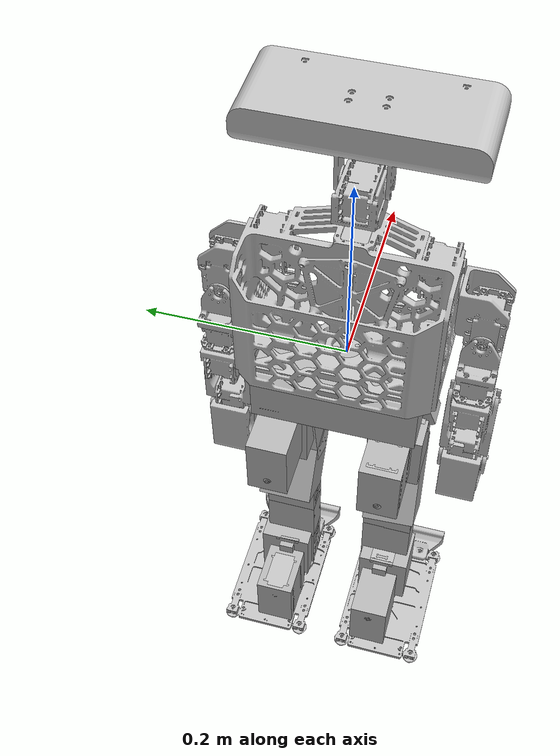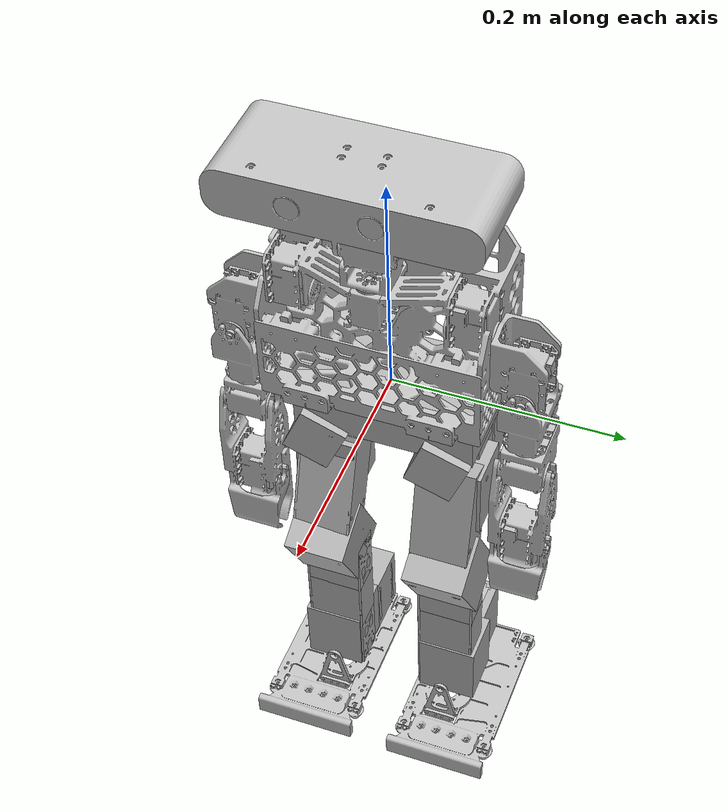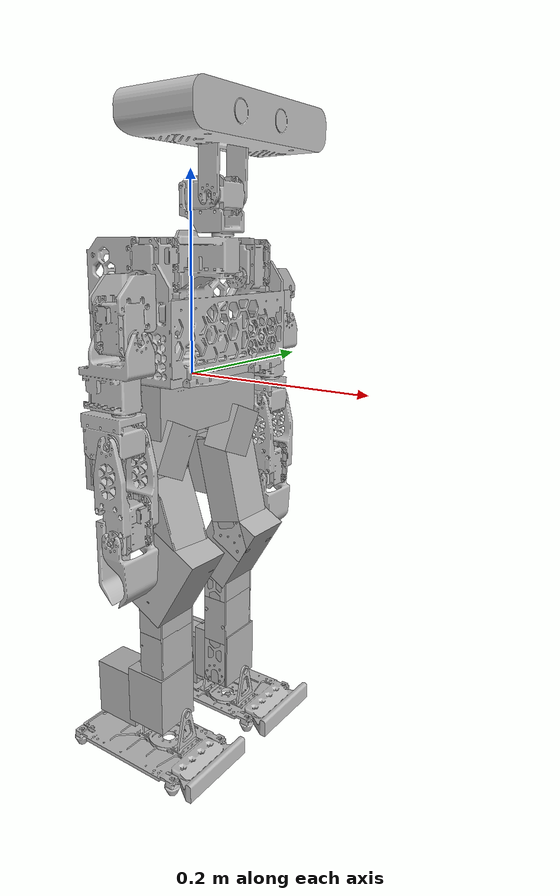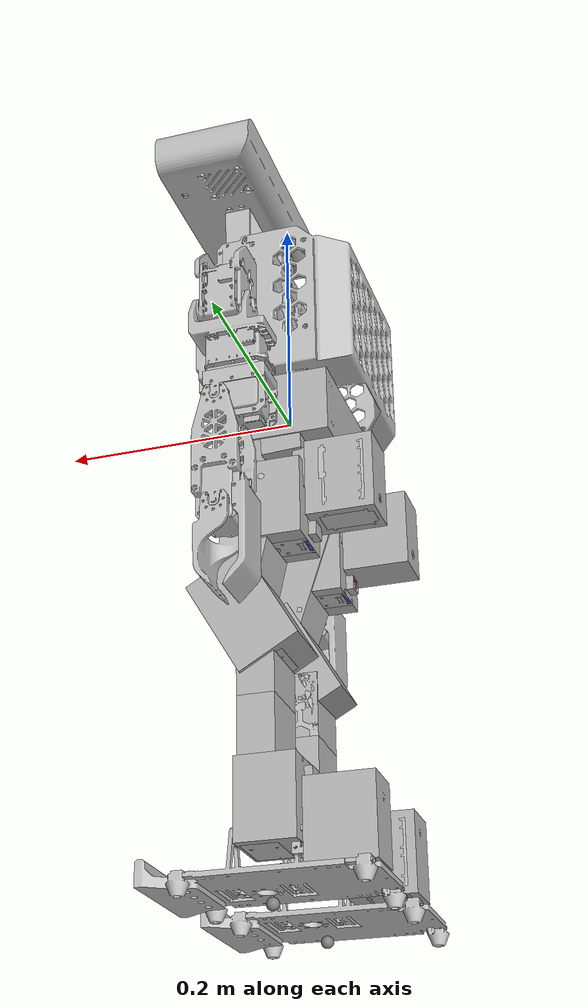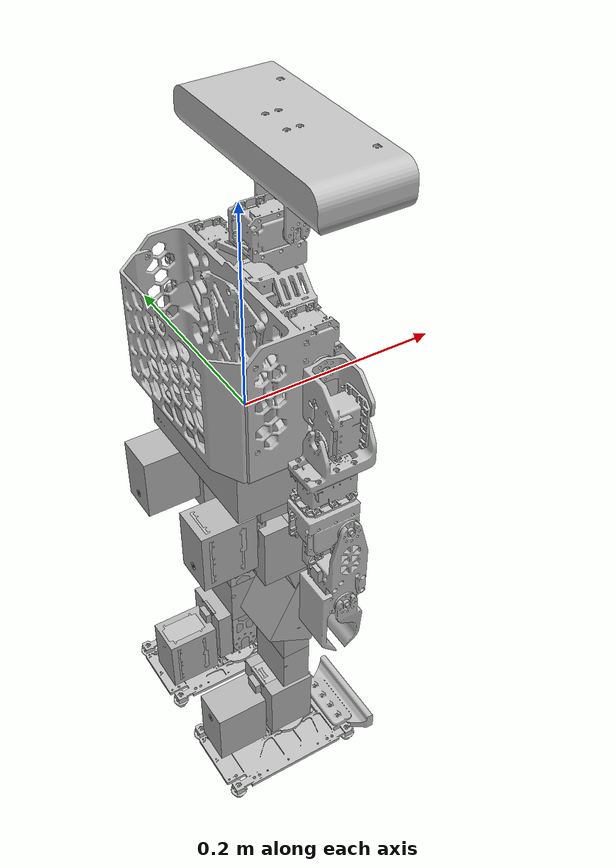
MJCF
<mujoco model="kid_RL_dance">
  <compiler angle="radian" meshdir="assets" eulerseq="XYZ" />
  <option timestep="0.001" integrator="implicitfast" />
  <default>
    <default class="mx28">
      <joint armature="0.006878" damping="0.373998" frictionloss="0.011890" actuatorfrcrange="-1.4 1.4" />
      <position kp="27" kv="0" forcerange="-1.4 1.4" />
    </default>
    <default class="mx64v2">
      <joint armature="0.011729" damping="1.058645" frictionloss="0.075020" actuatorfrcrange="-3.0 3.0" />
      <position kp="25" kv="0" forcerange="-3.0 3.0" />
    </default>
    <default class="mx106v2">
      <joint armature="0.026018" damping="2.472776" frictionloss="0.000000" actuatorfrcrange="-6.0 6.0" />
      <position kp="102" kv="0" forcerange="-6.0 6.0" />
    </default>
    <default class="xh540">
      <joint armature="0.037943" damping="3.456983" frictionloss="0.094161" actuatorfrcrange="-8.1 8.1" />
      <position kp="149" kv="0" forcerange="-8.1 8.1" />
    </default>
  </default>
  <asset>
    <mesh name="base_link" file="base_link.stl" scale="0.001 0.001 0.001" />
    <mesh name="torso" file="torso.stl" scale="0.001 0.001 0.001" />
    <mesh name="neck" file="neck.stl" scale="0.001 0.001 0.001" />
    <mesh name="head" file="head.stl" scale="0.001 0.001 0.001" />
    <mesh name="left_shoulder" file="left_shoulder.stl" scale="0.001 0.001 0.001" />
    <mesh name="left_arm1" file="left_arm1.stl" scale="0.001 0.001 0.001" />
    <mesh name="left_arm2" file="left_arm2.stl" scale="0.001 0.001 0.001" />
    <mesh name="left_arm3" file="left_arm3.stl" scale="0.001 0.001 0.001" />
    <mesh name="left_hand_tip" file="left_hand_tip.stl" scale="0.001 0.001 0.001" />
    <mesh name="right_shoulder" file="right_shoulder.stl" scale="0.001 0.001 0.001" />
    <mesh name="right_arm1" file="right_arm1.stl" scale="0.001 0.001 0.001" />
    <mesh name="right_arm2" file="right_arm2.stl" scale="0.001 0.001 0.001" />
    <mesh name="right_arm3" file="right_arm3.stl" scale="0.001 0.001 0.001" />
    <mesh name="right_hand_tip" file="right_hand_tip.stl" scale="0.001 0.001 0.001" />
    <mesh name="right_lower_leg_1" file="right_lower_leg_1.stl" scale="0.001 0.001 0.001" />
    <mesh name="left_lower_leg_1" file="left_lower_leg_1.stl" scale="0.001 0.001 0.001" />
    <mesh name="left_hip_bracket_1" file="left_hip_bracket_1.stl" scale="0.001 0.001 0.001" />
    <mesh name="left_hip_roll_motor_1" file="left_hip_roll_motor_1.stl" scale="0.001 0.001 0.001" />
    <mesh name="left_hip_crank_1" file="left_hip_crank_1.stl" scale="0.001 0.001 0.001" />
    <mesh name="left_hip_slider_1" file="left_hip_slider_1.stl" scale="0.001 0.001 0.001" />
    <mesh name="left_hip_front_1" file="left_hip_front_1.stl" scale="0.001 0.001 0.001" />
    <mesh name="left_thigh_1" file="left_thigh_1.stl" scale="0.001 0.001 0.001" />
    <mesh name="right_hip_bracket_1" file="right_hip_bracket_1.stl" scale="0.001 0.001 0.001" />
    <mesh name="right_hip_roll_motor_1" file="right_hip_roll_motor_1.stl" scale="0.001 0.001 0.001" />
    <mesh name="right_hip_crank_1" file="right_hip_crank_1.stl" scale="0.001 0.001 0.001" />
    <mesh name="right_hip_slider_1" file="right_hip_slider_1.stl" scale="0.001 0.001 0.001" />
    <mesh name="right_hip_front_1" file="right_hip_front_1.stl" scale="0.001 0.001 0.001" />
    <mesh name="right_thigh_1" file="right_thigh_1.stl" scale="0.001 0.001 0.001" />
    <mesh name="left_ankle_1" file="left_ankle_1.stl" scale="0.001 0.001 0.001" />
    <mesh name="left_ankle_slider_1" file="left_ankle_slider_1.stl" scale="0.001 0.001 0.001" />
    <mesh name="left_ankle_crank_1" file="left_ankle_crank_1.stl" scale="0.001 0.001 0.001" />
    <mesh name="left_foot_1" file="left_foot_1.stl" scale="0.001 0.001 0.001" />
    <mesh name="left_ankle_roll_motor_1" file="left_ankle_roll_motor_1.stl" scale="0.001 0.001 0.001" />
    <mesh name="right_ankle_1" file="right_ankle_1.stl" scale="0.001 0.001 0.001" />
    <mesh name="right_ankle_slider_1" file="right_ankle_slider_1.stl" scale="0.001 0.001 0.001" />
    <mesh name="right_foot_1" file="right_foot_1.stl" scale="0.001 0.001 0.001" />
    <mesh name="right_ankle_roll_motor_1" file="right_ankle_roll_motor_1.stl" scale="0.001 0.001 0.001" />
    <mesh name="right_ankle_crank_1" file="right_ankle_crank_1.stl" scale="0.001 0.001 0.001" />
    <mesh name="left_hip_cap_1" file="left_hip_cap_1.stl" scale="0.001 0.001 0.001" />
    <mesh name="left_hip_cap_1_col" file="left_hip_cap_1_col.stl" />
    <mesh name="right_hip_cap_1" file="right_hip_cap_1.stl" scale="0.001 0.001 0.001" />
    <mesh name="left_ankle_cap_1" file="left_ankle_cap_1.stl" scale="0.001 0.001 0.001" />
    <mesh name="right_ankle_cap_1" file="right_ankle_cap_1.stl" scale="0.001 0.001 0.001" />
  </asset>
  <worldbody>
    <body name="base_link" pos="0 0 0">
      <freejoint name="base_link" />
      <geom type="mesh" mesh="base_link" pos="0.000000 0.000000 0.000000" euler="0.000000 -0.000000 0.000000" contype="0" conaffinity="0" group="2" rgba="0.75 0.75 0.75 1" />
      <inertial pos="-0.014660122981346294 -2.252153885718999e-05 -0.026584967577509402" mass="0.5611" fullinertia="0.00157 0.000343 0.001655 -1e-06 9e-06 0.0" />
      <site name="imu" pos="-0.017 0 -0.0496" />
      <geom group="1" name="base_link_self_collision_1" size="0.028005 0.039405 0.079525" pos="-0.01485 -7e-05 -0.02526" quat="-0.499319 0.499297 -0.500705 -0.500677" type="box" rgba="0.7 0.7 0.7 1" />
      <body name="torso_1" pos="0.017735 0 0.0962">
        <geom type="mesh" mesh="torso" pos="0.00917687 -0.00103175 -0.0354626" euler="1.58934 -0.0356181 2.92334" contype="0" conaffinity="0" group="2" rgba="0.75 0.75 0.75 1" />
        <geom group="1" name="torso_collision" type="mesh" mesh="torso" pos="0.00917687 -0.00103175 -0.0354626" euler="1.58934 -0.0356181 2.92334" rgba="0.7 0.7 0.7 1" />
        <inertial pos="-0.0147903 -8.33356e-05 -0.0320971" mass="1.5321" fullinertia="0.00418258 0.00225604 0.0033129 9.59866e-07 -0.000137021 8.92173e-07" />
        <joint name="torso_yaw" pos="-0.017735 0 0" axis="0 0 1" range="-3.142 3.142" actuatorfrcrange="-3 3" class="mx64v2" />
        <body name="neck" pos="0.0213 0 0.04225">
          <geom type="mesh" mesh="neck" pos="-0.0534631 0.156969 -0.00215108" euler="1.5708 0 -3.14159" contype="0" conaffinity="0" group="2" rgba="0.75 0.75 0.75 1" />
          <geom group="1" name="neck_collision" type="mesh" mesh="neck" pos="-0.0534631 0.156969 -0.00215108" euler="1.5708 0 -3.14159" rgba="0.7 0.7 0.7 1" />
          <inertial pos="-0.0107301 -1.03356e-05 0.0297537" mass="0.09807" fullinertia="2.17172e-05 2.46008e-05 2.28552e-05 -2.38446e-07 1.74031e-06 3.81972e-09" />
          <joint name="neck_yaw" pos="0 0 0" axis="0 0 1" range="-3.14159 3.14159" actuatorfrcrange="-1.4 1.4" class="mx28" />
          <body name="head" pos="0 0.0205 0.035029">
            <geom type="mesh" mesh="head" pos="-0.0138564 -0.0205 0.0337954" euler="1.5708 0 -3.14159" contype="0" conaffinity="0" group="2" rgba="0.75 0.75 0.75 1" />
            <geom group="1" name="head_collision" type="mesh" mesh="head" pos="-0.0138564 -0.0205 0.0337954" euler="1.5708 0 -3.14159" rgba="0.7 0.7 0.7 1" />
            <inertial pos="0.017818 -0.0177251 0.0624542" mass="0.3443" fullinertia="0.00147234 0.000352169 0.0016543 2.35347e-05 -2.63563e-06 9.94104e-06" />
            <joint name="head_pitch" pos="0 0 0" axis="0 1 0" range="-1.5 1.57" actuatorfrcrange="-1.4 1.4" class="mx28" />
          </body>
        </body>
        <body name="left_shoulder_1" pos="0 0.0955 0">
          <geom type="mesh" mesh="left_shoulder" pos="-0.247825 0.347277 -0.822151" euler="1.5708 0 -3.14159" contype="0" conaffinity="0" group="2" rgba="0.75 0.75 0.75 1" />
          <geom group="1" name="left_shoulder_collision" type="mesh" mesh="left_shoulder" pos="-0.247825 0.347277 -0.822151" euler="1.5708 0 -3.14159" rgba="0.7 0.7 0.7 1" />
          <inertial pos="-1.03946e-05 0.0240211 -0.0315827" mass="0.09672" fullinertia="2.94982e-05 3.1956e-05 1.85058e-05 2.05401e-09 2.33524e-07 4.17623e-06" />
          <joint name="left_shoulder_pitch" pos="0 0 0" axis="0 1 0" range="-3.14159 3.14159" actuatorfrcrange="-1.4 1.4" class="mx28" />
          <body name="left_arm1" pos="0.0235 0.0268 -0.0488">
            <geom type="mesh" mesh="left_arm1" pos="-0.277811 0.331468 -0.834185" euler="1.5708 0 -3.14159" contype="0" conaffinity="0" group="2" rgba="0.75 0.75 0.75 1" />
            <geom group="1" name="left_arm1_collision" type="mesh" mesh="left_arm1" pos="-0.277811 0.331468 -0.834185" euler="1.5708 0 -3.14159" rgba="0.7 0.7 0.7 1" />
            <inertial pos="-0.031599 0 -0.0393497" mass="0.1018" fullinertia="2.59605e-05 4.03232e-05 2.74419e-05 -2.01307e-11 -4.3661e-06 -1.08647e-10" />
            <joint name="left_shoulder_roll" pos="0 0 0" axis="1 0 0" range="-1.138 1.5" actuatorfrcrange="-1.4 1.4" class="mx28" />
            <body name="left_arm2" pos="-0.0235 0 -0.0675">
              <geom type="mesh" mesh="left_arm2" pos="-0.2852 0.355112 -0.839715" euler="1.5708 0 -3.14159" contype="0" conaffinity="0" group="2" rgba="0.75 0.75 0.75 1" />
              <geom group="1" name="left_arm2_collision" type="mesh" mesh="left_arm2" pos="-0.2852 0.355112 -0.839715" euler="1.5708 0 -3.14159" rgba="0.7 0.7 0.7 1" />
              <inertial pos="-0.0118565 -1.01299e-05 -0.0203817" mass="0.0954" fullinertia="1.83259e-05 2.30129e-05 2.22504e-05 -2.37497e-07 8.70377e-07 -3.71104e-09" />
              <joint name="left_shoulder_yaw" pos="0 0 0" axis="0 0 -1" range="-3.14159 3.14159" actuatorfrcrange="-1.4 1.4" class="mx28" />
              <body name="left_arm3" pos="0 0.0205 -0.0254">
                <geom type="mesh" mesh="left_arm3" pos="-0.259242 0.35253 -0.864001" euler="1.5708 0 -3.14159" contype="0" conaffinity="0" group="2" rgba="0.75 0.75 0.75 1" />
                <geom group="1" name="left_arm3_collision" type="mesh" mesh="left_arm3" pos="-0.259242 0.35253 -0.864001" euler="1.5708 0 -3.14159" rgba="0.7 0.7 0.7 1" />
                <inertial pos="-0.00379081 -0.0204452 -0.0778713" mass="0.1302" fullinertia="0.000137342 0.000129022 3.77684e-05 -7.91148e-08 -1.65918e-05 -1.31286e-08" />
                <joint name="left_elbow_pitch" pos="0 0 0" axis="0 1 0" range="-2.443461 2.089" actuatorfrcrange="-1.4 1.4" class="mx28" />
                <body name="left_hand_tip" pos="0 0 -0.0929">
                  <geom type="mesh" mesh="left_hand_tip" pos="-0.267569 0.349304 -0.869733" euler="1.5708 -9.20831e-05 -3.14159" contype="0" conaffinity="0" group="2" rgba="0.75 0.75 0.75 1" />
                  <geom group="1" name="left_hand_tip_collision" type="mesh" mesh="left_hand_tip" pos="-0.267569 0.349304 -0.869733" euler="1.5708 -9.20831e-05 -3.14159" rgba="0.7 0.7 0.7 1" />
                  <inertial pos="0.00958026 -0.02035 -0.0309289" mass="0.0166" fullinertia="1.12831e-05 6.97474e-06 6.12917e-06 4.25063e-12 1.07167e-06 1.48412e-11" />
                  <joint name="left_wrist_pitch" pos="0 0 0" axis="0 1 0" range="-1.34 0.119" actuatorfrcrange="-1.4 1.4" class="mx28" />
                </body>
              </body>
            </body>
          </body>
        </body>
        <body name="right_shoulder_1" pos="0 -0.0955 0">
          <geom type="mesh" mesh="right_shoulder" pos="-0.0719616 0.169128 -0.464197" euler="1.5708 0 -3.14159" contype="0" conaffinity="0" group="2" rgba="0.75 0.75 0.75 1" />
          <geom group="1" name="right_shoulder_collision" type="mesh" mesh="right_shoulder" pos="-0.0719616 0.169128 -0.464197" euler="1.5708 0 -3.14159" rgba="0.7 0.7 0.7 1" />
          <inertial pos="-1.03752e-05 -0.0240211 -0.0315826" mass="0.09672" fullinertia="2.94943e-05 3.19526e-05 1.8505e-05 -2.29952e-09 2.34069e-07 -4.17768e-06" />
          <joint name="right_shoulder_pitch" pos="0 0 0" axis="0 -1 0" range="-3.14159 3.14159" actuatorfrcrange="-1.4 1.4" class="mx28" />
          <body name="right_arm1" pos="0.0235 -0.0268 -0.0488">
            <geom type="mesh" mesh="right_arm1" pos="-0.154172 0.175846 -0.504535" euler="1.5708 0 -3.14159" contype="0" conaffinity="0" group="2" rgba="0.75 0.75 0.75 1" />
            <geom group="1" name="right_arm1_collision" type="mesh" mesh="right_arm1" pos="-0.154172 0.175846 -0.504535" euler="1.5708 0 -3.14159" rgba="0.7 0.7 0.7 1" />
            <inertial pos="-0.031599 0 -0.0393496" mass="0.1018" fullinertia="2.59562e-05 4.03191e-05 2.74411e-05 -3.8577e-10 -4.36512e-06 -1.53172e-09" />
            <joint name="right_shoulder_roll" pos="0 0 0" axis="1 0 0" range="-1.5 1.138" actuatorfrcrange="-1.4 1.4" class="mx28" />
            <body name="right_arm2" pos="-0.0235 0 -0.0675">
              <geom type="mesh" mesh="right_arm2" pos="-0.191661 0.171556 -0.641651" euler="1.5708 0 -3.14159" contype="0" conaffinity="0" group="2" rgba="0.75 0.75 0.75 1" />
              <geom group="1" name="right_arm2_collision" type="mesh" mesh="right_arm2" pos="-0.191661 0.171556 -0.641651" euler="1.5708 0 -3.14159" rgba="0.7 0.7 0.7 1" />
              <inertial pos="-0.0118565 1.00917e-05 -0.0203815" mass="0.0954" fullinertia="1.83187e-05 2.30056e-05 2.22493e-05 2.3696e-07 8.7232e-07 1.8629e-09" />
              <joint name="right_shoulder_yaw" pos="0 0 0" axis="0 0 -1" range="-3.14159 3.14159" actuatorfrcrange="-1.4 1.4" class="mx28" />
              <body name="right_arm3" pos="0 -0.0205 -0.0254">
                <geom type="mesh" mesh="right_arm3" pos="-0.152514 0.239321 -0.684498" euler="1.5708 0 -3.14159" contype="0" conaffinity="0" group="2" rgba="0.75 0.75 0.75 1" />
                <geom group="1" name="right_arm3_collision" type="mesh" mesh="right_arm3" pos="-0.152514 0.239321 -0.684498" euler="1.5708 0 -3.14159" rgba="0.7 0.7 0.7 1" />
                <inertial pos="-0.00379079 0.0205208 -0.0778712" mass="0.1302" fullinertia="0.000137339 0.000129015 3.77708e-05 1.99952e-07 -1.65902e-05 3.00036e-07" />
                <joint name="right_elbow_pitch" pos="0 0 0" axis="0 -1 0" range="-2.496 2.443461" actuatorfrcrange="-1.4 1.4" class="mx28" />
                <body name="right_hand_tip" pos="0 0 -0.0929">
                  <geom type="mesh" mesh="right_hand_tip" pos="-0.217737 0.271061 -0.719646" euler="1.5708 0 -3.14159" contype="0" conaffinity="0" group="2" rgba="0.75 0.75 0.75 1" />
                  <geom group="1" name="right_hand_tip_collision" type="mesh" mesh="right_hand_tip" pos="-0.217737 0.271061 -0.719646" euler="1.5708 0 -3.14159" rgba="0.7 0.7 0.7 1" />
                  <inertial pos="0.00958026 0.02035 -0.0309289" mass="0.0166" fullinertia="1.12831e-05 6.97473e-06 6.12917e-06 8.59288e-13 1.07168e-06 8.22664e-12" />
                  <joint name="right_wrist_pitch" pos="0 0 0" axis="0 -1 0" range="-1.34 0.119" actuatorfrcrange="-1.4 1.4" class="mx28" />
                </body>
              </body>
            </body>
          </body>
        </body>
      </body>
      <body name="left_hip_bracket_1" pos="5e-05 0.054988 -0.0488">
        <geom type="mesh" mesh="left_hip_roll_motor_1" pos="-0.000050 -0.054988 0.048800" euler="0.000000 -0.000000 0.000000" contype="0" conaffinity="0" group="2" rgba="0.75 0.75 0.75 1" />
        <geom type="mesh" mesh="left_hip_bracket_1" pos="-0.000050 -0.054988 0.048800" euler="0.000000 0.000000 0.000000" contype="0" conaffinity="0" group="2" rgba="0.75 0.75 0.75 1" />
        <inertial pos="-0.0472852 -2.23639e-06 -0.036961" quat="0.619182 0.341458 0.341481 0.619202" mass="0.2182" diaginertia="0.00032303 0.000277655 9.53752e-05" />
        <joint name="left_hip_yaw" pos="0 0 0" axis="0 0 -1" range="-3.142 3.142" actuatorfrcrange="-3 3" class="mx64v2" />
        <geom group="1" name="left_hip_bracket_1_self_collision_1" size="0.01466 0.02204 0.02592" pos="0.01536 -0.00578 -0.01798" quat="0.181879 0.982382 0.00406092 -0.0427778" type="box" rgba="0.7 0.7 0.7 1" />
        <geom group="1" name="left_hip_bracket_1_self_collision_2" size="0.01057 0.016985 0.019395" pos="-0.03403 -1e-05 -0.0335" quat="0.00286898 0.00287459 0.707791 0.70641" type="box" rgba="0.7 0.7 0.7 1" />
        <geom group="1" name="left_hip_bracket_1_self_collision_3" size="0.00957 0.01649 0.022995" pos="-0.01453 3e-05 -0.00874" quat="-0.486806 -0.48789 -0.511862 0.512816" type="box" rgba="0.7 0.7 0.7 1" />
        <geom group="1" name="left_hip_bracket_1_self_collision_4" size="0.0201 0.02765 0.03255" pos="-0.06079 0 -0.04395" quat="-2.59736e-06 0.707105 -0.707108 -4.47371e-06" type="box" rgba="0.7 0.7 0.7 1" />
        <body name="left_hip_crank_1" pos="-0.03794 1e-06 -0.062">
          <geom type="mesh" mesh="left_hip_crank_1" pos="0.037890 -0.054989 0.110800" euler="0.000000 0.000000 0.000000" contype="0" conaffinity="0" group="2" rgba="1 0 0 1" />
          <inertial pos="0.0023604858 1.1400421e-05 -0.0084431491" quat="0.70247695 0.00049538999 -0.71170614 -0.00050152011" mass="0.0032647" diaginertia="1.488758e-07 1.716439e-07 3.067942e-07" />
          <joint name="left_hip_roll_crank" pos="0 0 0" axis="1 0 0" range="-1.186824 1.186824" actuatorfrcrange="-6 6" class="mx106v2" />
          <geom group="1" name="left_hip_crank_1_self_collision_1" size="0.0025 0.008235 0.01274" pos="0.0025 -2e-05 -0.00374" quat="-1.32398e-05 1.50488e-05 0.708789 0.705421" type="box" rgba="0.7 0.7 0.7 1" />
          <geom group="1" name="left_hip_crank_1_self_collision_2" size="0.005515 0.00747 0.007815" pos="0.00549 -0.00012 -0.01852" quat="0.710219 0.703978 -0.00158653 0.00138955" type="box" rgba="0.7 0.7 0.7 1" />
          <body name="left_hip_cap_1" pos="0.005 2.8e-05 -0.02">
            <geom type="mesh" mesh="left_hip_cap_1" pos="0.03289 -0.055017 0.1308" euler="0.000000 0.000000 0.000000" contype="0" conaffinity="0" group="2" rgba="0.85 0.85 0.85 1" />
            <inertial pos="0.0025592242 -4.4152672e-07 -1.8977691e-07" mass="0.0008848618" diaginertia="1.06614067e-08 1.14980172e-08 1.66189136e-08" />
            <joint name="left_hip_roll_cap" pos="0 0 0" axis="1 0 0" range="-1.92 1.92" armature="1e-3" frictionloss="0.00005" damping="0.0005" />
            <geom name="left_hip_cap" type="mesh" mesh="left_hip_cap_1_col" pos="0.00335 0 0" contype="16" conaffinity="16" group="2" rgba="0 1 1 1" solref="0.0002 1" solimp="0.9 0.9999 0.00002 0.5 2" friction="0.2 0.005 0.0001" />
          </body>
        </body>
        <body name="left_hip_slider_1" pos="-0.0285 0 -0.042">
          <geom type="mesh" mesh="left_hip_front_1" pos="0.028450 -0.054988 0.090800" euler="0.000000 -0.000000 0.000000" contype="0" conaffinity="0" group="2" rgba="0.75 0.75 0.75 1" />
          <geom type="mesh" mesh="left_hip_slider_1" pos="0.028450 -0.054988 0.090800" euler="0.000000 0.000000 0.000000" contype="0" conaffinity="0" group="2" rgba="0 0 1 0.5" />
          <geom name="left_hip_groove_wall1" type="box" size="0.0005 0.0005 0.02568" pos="-0.0015 -0.004871 -0.02512" contype="16" conaffinity="16" group="2" rgba="1 1 0 0.7" solref="0.0002 1" solimp="0.9 0.9999 0.00002 0.5 2" friction="0.2 0.005 0.0001" />
          <geom name="left_hip_groove_wall2" type="box" size="0.0005 0.0005 0.02568" pos="-0.0015 0.004929 -0.02512" contype="16" conaffinity="16" group="2" rgba="1 0.4 0.7 0.7" solref="0.0002 1" solimp="0.9 0.9999 0.00002 0.5 2" friction="0.2 0.005 0.0001" />
          <inertial pos="0.0265704 0.000480942 -0.01717" quat="0.999178 -0.0119769 0.038095 -0.00697938" mass="0.2259" diaginertia="0.000126987 0.000118981 7.28437e-05" />
          <joint name="left_hip_roll_actual" pos="0 0 0" axis="1 0 0" actuatorfrcrange="-6 6" armature="1e-3" frictionloss="0.005" damping="0.04" />
          <geom group="1" name="left_hip_slider_1_self_collision_1" size="0.0015 0.01295 0.029745" pos="-0.0015 -0.0005 -0.02225" quat="1.76038e-12 1.32679e-06 -1 -1.32679e-06" type="box" rgba="0.7 0.7 0.7 1" />
          <geom group="1" name="left_hip_slider_1_self_collision_2" size="0.024095 0.02715 0.032875" pos="0.02102 0.00265 -0.01912" quat="2.13268e-05 1 0 0" type="box" rgba="0.7 0.7 0.7 1" />
          <body name="left_thigh_1" pos="0.02837 0.024502 -1e-06">
            <geom type="mesh" mesh="left_thigh_1" pos="0.000080 -0.079490 0.090801" euler="0.000000 0.000000 0.000000" contype="0" conaffinity="0" group="2" rgba="0.75 0.75 0.75 1" />
            <inertial pos="0.016964 -0.0241263 -0.113466" quat="0.998967 0.00560049 0.0354875 0.0278342" mass="0.3019" diaginertia="0.000372261 0.000356971 0.000132768" />
            <joint name="left_hip_pitch" pos="0 0 0" axis="0 1 -4.1e-05" range="-2.021 1.036" actuatorfrcrange="-8.1 8.1" class="xh540" />
            <geom group="1" name="left_thigh_1_self_collision_1" size="0.027055 0.02815 0.04352" pos="0.01729 -0.02285 -0.11156" quat="5.76445e-06 0.25882 1.63869e-05 0.965926" type="box" rgba="0.7 0.7 0.7 1" />
            <geom group="1" name="left_thigh_1_self_collision_2" size="0.01908 0.026535 0.048" pos="0.01169 -0.02447 -0.03227" quat="2.06177e-05 0.993481 2.53611e-06 0.114002" type="box" rgba="0.7 0.7 0.7 1" />
            <body name="left_lower_leg_1" pos="0.00706 -6e-06 -0.140035">
              <geom type="mesh" mesh="left_lower_leg_1" pos="-0.006980 -0.079484 0.230836" euler="0.000000 0.000000 0.000000" contype="0" conaffinity="0" group="2" rgba="0.75 0.75 0.75 1" />
              <inertial pos="-0.000109477 -0.0244324 -0.0690136" quat="0.999977 0 -0.00684755 0" mass="0.0689" diaginertia="0.000103014 8.1e-05 2.99863e-05" />
              <joint name="left_knee_pitch" pos="0 0 0" axis="0 1 -4.1e-05" range="-1.594 1.57" actuatorfrcrange="-8.1 8.1" class="xh540" />
              <geom group="1" name="left_lower_leg_1_self_collision_1" size="0.015 0.0265 0.02794" pos="0 -0.02443 -0.06808" quat="1.32679e-06 2.65359e-11 2e-05 1" type="box" rgba="0.7 0.7 0.7 1" />
              <geom group="1" name="left_lower_leg_1_self_collision_2" size="0.015 0.02643 0.028855" pos="0 -0.02443 -0.12395" quat="2.82963e-11 -1.32679e-06 1 -2.13268e-05" type="box" rgba="0.7 0.7 0.7 1" />
              <geom group="1" name="left_lower_leg_1_self_collision_3" size="0.015 0.02643 0.027755" pos="0 -0.02443 -0.0128" quat="1.32679e-06 2.65359e-11 2e-05 1" type="box" rgba="0.7 0.7 0.7 1" />
              <body name="left_ankle_1" pos="0 -0.048865 -0.139998">
                <geom type="mesh" mesh="left_ankle_slider_1" pos="-0.006980 -0.030619 0.370834" euler="0.000000 -0.000000 0.000000" contype="0" conaffinity="0" group="2" rgba="0 0 1 0.5" />
                <geom type="mesh" mesh="left_ankle_1" pos="-0.006980 -0.030619 0.370834" euler="0.000000 0.000000 0.000000" contype="0" conaffinity="0" group="2" rgba="0.75 0.75 0.75 1" />
                <inertial pos="-0.00179925 0.0249793 0.0171703" quat="0.999178 0.0119751 -0.038095 -0.00696605" mass="0.2259" diaginertia="0.000126987 0.000118981 7.28437e-05" />
                <joint name="left_ankle_pitch" pos="0 0 0" axis="0 1 0" range="-1.715 0.934" actuatorfrcrange="-8.1 8.1" class="xh540" />
                <geom group="1" name="left_ankle_1_self_collision_1" size="0.024095 0.02715 0.032875" pos="-0.00734 0.02715 0.01913" quat="1.76038e-12 1.32679e-06 -1 -1.32679e-06" type="box" rgba="0.7 0.7 0.7 1" />
                <geom group="1" name="left_ankle_1_self_collision_2" size="0.0015 0.013025 0.02991" pos="-0.02987 0.02294 0.02251" quat="0.0226694 0.999743 -9.06775e-07 3.99897e-05" type="box" rgba="0.7 0.7 0.7 1" />
                <body name="left_foot_1" pos="-0.02837 0.024499 0">
                  <geom type="mesh" mesh="left_ankle_roll_motor_1" pos="0.021390 -0.055118 0.370834" euler="0.000000 -0.000000 0.000000" contype="0" conaffinity="0" group="2" rgba="0.75 0.75 0.75 1" />
                  <geom type="mesh" mesh="left_foot_1" pos="0.021390 -0.055118 0.370834" euler="0.000000 0.000000 0.000000" contype="0" conaffinity="0" group="2" rgba="0.75 0.75 0.75 1" />
                  <inertial pos="0.0129337 0.00684688 -0.0230149" quat="0.139537 0.758026 0.246772 0.587392" mass="0.4017" diaginertia="0.00168157 0.00162103 0.000387011" />
                  <joint name="left_ankle_roll_actual" pos="0 0 0" axis="1 0 0" actuatorfrcrange="-6 6" armature="1e-3" frictionloss="0.005" damping="0.04" />
                  <geom group="1" name="left_foot_collision_1" size="0.0877 0.049485 0.030245" pos="0.02082 0.01192 -0.02175" type="box" rgba="0 0 0 0" />
                  <geom group="1" name="left_foot_collision_stud_1" size="0.005 0.005 0.005" pos="-0.05833 -0.02908 -0.0505" type="box" rgba="0 0 0 0" />
                  <geom group="1" name="left_foot_collision_stud_2" size="0.005 0.005 0.005" pos="-0.05833 0.05292 -0.0505" type="box" rgba="0 0 0 0" />
                  <geom group="1" name="left_foot_collision_stud_3" size="0.005 0.005 0.005" pos="0.07822 -0.02908 -0.0505" type="box" rgba="0 0 0 0" />
                  <geom group="1" name="left_foot_collision_stud_4" size="0.005 0.005 0.005" pos="0.07822 0.05292 -0.0505" type="box" rgba="0 0 0 0" />
                  <geom group="1" name="left_foot_collision_2" size="0.0201 0.02765 0.03255" pos="-0.03228 9e-06 0.00195" quat="9.38184e-07 0.707105 0.707108 9.38187e-07" type="box" rgba="0.7 0.7 0.7 1" />
                  <!-- 5 mm inward-only clearance proxy; bit 32 isolates it from terrain. -->
                  <geom name="left_foot_inner_safety" type="box" size="0.0877 0.0025 0.031995" pos="0.02082 -0.040065 -0.0235" contype="32" conaffinity="32" condim="1" density="0" group="1" rgba="0 0 0 0" />
                  <site name="left_foot" pos="0.02082 0.01192 -0.0555" size="0.005" />
                  <body name="left_ankle_crank_1" pos="-0.00943 9e-06 0.02">
                    <geom type="mesh" mesh="left_ankle_crank_1" pos="0.030820 -0.055127 0.350834" euler="0.000000 0.000000 0.000000" contype="0" conaffinity="0" group="2" rgba="1 0 0 1" />
                    <inertial pos="0.0023605324 -1.2110239e-05 0.0084431822" quat="0.71170614 0.00050137353 -0.70247695 -0.00049523383" mass="0.0032647" diaginertia="1.488758e-07 1.716438e-07 3.067941e-07" />
                    <joint name="left_ankle_roll_crank" pos="0 0 0" axis="1 0 0" range="-1.047198 1.396263" actuatorfrcrange="-6 6" class="mx106v2" />
                    <geom group="1" name="left_ankle_crank_1_self_collision_1" size="0.0025 0.00828 0.012735" pos="0.0025 2e-05 0.00378" quat="0.70879 0.70542 -2.83516e-05 2.82168e-05" type="box" rgba="0.7 0.7 0.7 1" />
                    <geom group="1" name="left_ankle_crank_1_self_collision_2" size="0.00552 0.007475 0.00781" pos="0.00549 0.00017 0.01852" quat="0.00121454 -0.000123056 0.702024 -0.712153" type="box" rgba="0.7 0.7 0.7 1" />
                    <body name="left_ankle_cap_1" pos="0.005 -2.8e-05 0.02">
                      <geom type="mesh" mesh="left_ankle_cap_1" pos="0.02582 -0.055099 0.330834" euler="0.000000 0.000000 0.000000" contype="0" conaffinity="0" group="2" rgba="0.85 0.85 0.85 1" />
                      <inertial pos="0.0025594700 -2.6812024e-07 2.2326419e-07" mass="0.0008848618" diaginertia="1.06614075e-08 1.14980143e-08 1.66189119e-08" />
                      <joint name="left_ankle_roll_cap" pos="0 0 0" axis="1 0 0" range="-1.92 1.92" armature="1e-3" frictionloss="0.00005" damping="0.0005" />
                      <geom name="left_ankle_cap" type="mesh" mesh="left_hip_cap_1_col" pos="0.00335 0 0" contype="16" conaffinity="16" group="2" rgba="0 1 1 1" solref="0.0002 1" solimp="0.9 0.9999 0.00002 0.5 2" friction="0.2 0.005 0.0001" />
                    </body>
                  </body>
                </body>
                <geom name="left_ankle_groove_wall1" type="box" size="0.0005 0.0005 0.02568" pos="-0.02987 0.019580 0.02445" contype="16" conaffinity="16" group="2" rgba="1 1 0 0.7" solref="0.0002 1" solimp="0.9 0.9999 0.00002 0.5 2" friction="0.2 0.005 0.0001" />
                <geom name="left_ankle_groove_wall2" type="box" size="0.0005 0.0005 0.02568" pos="-0.02987 0.029380 0.02445" contype="16" conaffinity="16" group="2" rgba="1 0.4 0.7 0.7" solref="0.0002 1" solimp="0.9 0.9999 0.00002 0.5 2" friction="0.2 0.005 0.0001" />
              </body>
            </body>
          </body>
        </body>
      </body>
      <body name="right_hip_bracket_1" pos="0 -0.055 -0.0488">
        <geom type="mesh" mesh="right_hip_roll_motor_1" pos="0.000000 0.055000 0.048800" euler="0.000000 -0.000000 0.000000" contype="0" conaffinity="0" group="2" rgba="0.75 0.75 0.75 1" />
        <geom type="mesh" mesh="right_hip_bracket_1" pos="-0.000000 0.055000 0.048800" euler="0.000000 0.000000 0.000000" contype="0" conaffinity="0" group="2" rgba="0.75 0.75 0.75 1" />
        <inertial pos="-0.0472851 -2.78238e-06 -0.0369607" quat="0.619181 0.34146 0.341483 0.619201" mass="0.2182" diaginertia="0.000323029 0.000277654 9.53753e-05" />
        <joint name="right_hip_yaw" pos="0 0 0" axis="0 0 -1" range="-3.142 3.142" actuatorfrcrange="-3 3" class="mx64v2" />
        <geom group="1" name="right_hip_bracket_1_self_collision_1" size="0.01047 0.016855 0.0193" pos="-0.03397 0 -0.03364" quat="9.38184e-07 -9.38187e-07 -0.707108 0.707105" type="box" rgba="0.7 0.7 0.7 1" />
        <geom group="1" name="right_hip_bracket_1_self_collision_2" size="0.00958 0.01663 0.022995" pos="-0.01434 3e-05 -0.00867" quat="0.510011 0.513401 -0.489152 0.486866" type="box" rgba="0.7 0.7 0.7 1" />
        <geom group="1" name="right_hip_bracket_1_self_collision_3" size="0.014375 0.021545 0.02629" pos="0.01535 -0.00594 -0.017" quat="0.205556 0.977996 0.0101695 -0.0341665" type="box" rgba="0.7 0.7 0.7 1" />
        <geom group="1" name="right_hip_bracket_1_self_collision_4" size="0.0201 0.02765 0.03255" pos="-0.06079 0 -0.04395" quat="-2.59736e-06 0.707105 0.707108 4.47371e-06" type="box" rgba="0.7 0.7 0.7 1" />
        <body name="right_hip_crank_1" pos="-0.03794 0 -0.062">
          <geom type="mesh" mesh="right_hip_crank_1" pos="0.037940 0.055000 0.110800" euler="0.000000 0.000000 0.000000" contype="0" conaffinity="0" group="2" rgba="1 0 0 1" />
          <inertial pos="0.0023605607 1.1836473e-05 -0.0084427441" quat="0.70247696 0.00049532026 -0.71170614 -0.00050145012" mass="0.0032647" diaginertia="1.488758e-07 1.716440e-07 3.067942e-07" />
          <joint name="right_hip_roll_crank" pos="0 0 0" axis="1 0 0" range="-1.186824 1.186824" actuatorfrcrange="-6 6" class="mx106v2" />
          <geom group="1" name="right_hip_crank_1_self_collision_1" size="0.002505 0.008195 0.01274" pos="0.0025 -2e-05 -0.0037" quat="0.708779 0.70543 0.000155931 -0.000155195" type="box" rgba="0.7 0.7 0.7 1" />
          <geom group="1" name="right_hip_crank_1_self_collision_2" size="0.0055 0.00778 0.0078" pos="0.0055 -0.00043 -0.01819" quat="9.12172e-07 9.63497e-07 -0.726184 -0.6875" type="box" rgba="0.7 0.7 0.7 1" />
          <body name="right_hip_cap_1" pos="0.005 2.8e-05 -0.02">
            <geom type="mesh" mesh="right_hip_cap_1" pos="0.03294 0.054972 0.1308" euler="0.000000 0.000000 0.000000" contype="0" conaffinity="0" group="2" rgba="0.85 0.85 0.85 1" />
            <inertial pos="0.0025594982 -5.2790645e-09 2.1653344e-07" mass="0.0008848618" diaginertia="1.06614077e-08 1.14980114e-08 1.66189113e-08" />
            <joint name="right_hip_roll_cap" pos="0 0 0" axis="1 0 0" range="-1.92 1.92" armature="1e-3" frictionloss="0.00005" damping="0.0005" />
            <geom name="right_hip_cap" type="mesh" mesh="left_hip_cap_1_col" pos="0.00335 0 0" contype="16" conaffinity="16" group="2" rgba="0 1 1 1" solref="0.0002 1" solimp="0.9 0.9999 0.00002 0.5 2" friction="0.2 0.005 0.0001" />
          </body>
        </body>
        <body name="right_hip_slider_1" pos="-0.0285 0 -0.042">
          <geom type="mesh" mesh="right_hip_front_1" pos="0.028500 0.055000 0.090800" euler="0.000000 -0.000000 0.000000" contype="0" conaffinity="0" group="2" rgba="0.75 0.75 0.75 1" />
          <geom type="mesh" mesh="right_hip_slider_1" pos="0.028500 0.055000 0.090800" euler="0.000000 0.000000 0.000000" contype="0" conaffinity="0" group="2" rgba="0 0 1 0.5" />
          <inertial pos="0.0265705 -0.000501474 -0.01717" quat="0.999212 0.0109123 0.0381611 -0.000894125" mass="0.2259" diaginertia="0.000126981 0.00011898 7.28423e-05" />
          <joint name="right_hip_roll_actual" pos="0 0 0" axis="1 0 0" actuatorfrcrange="-6 6" armature="1e-3" frictionloss="0.005" damping="0.04" />
          <geom group="1" name="right_hip_slider_1_self_collision_1" size="0.0015 0.01295 0.02975" pos="-0.0015 -0.0005 -0.02225" quat="1.32679e-06 1 0 0" type="box" rgba="0.7 0.7 0.7 1" />
          <geom group="1" name="right_hip_slider_1_self_collision_2" size="0.024095 0.02715 0.032875" pos="0.02103 -0.00265 -0.01912" quat="1.50283e-11 1.32679e-06 1 1.13268e-05" type="box" rgba="0.7 0.7 0.7 1" />
          <body name="right_thigh_1" pos="0.02837 -0.024502 -1e-06">
            <geom type="mesh" mesh="right_thigh_1" pos="0.000130 0.079502 0.090801" euler="0.000000 0.000000 0.000000" contype="0" conaffinity="0" group="2" rgba="0.75 0.75 0.75 1" />
            <inertial pos="0.015756 0.0240027 -0.112843" quat="0.998454 -0.00613055 0.0475025 -0.0281945" mass="0.3019" diaginertia="0.000366149 0.000351974 0.000133877" />
            <joint name="right_hip_pitch" pos="0 0 0" axis="0 -1 -2.4e-05" range="-1.036 2.021" actuatorfrcrange="-8.1 8.1" class="xh540" />
            <geom group="1" name="right_thigh_1_self_collision_1" size="0.027425 0.027435 0.04457" pos="0.01715 0.02332 -0.1115" quat="0.0220145 0.966981 0.00629643 -0.253817" type="box" rgba="0.7 0.7 0.7 1" />
            <geom group="1" name="right_thigh_1_self_collision_2" size="0.018805 0.0265 0.04939" pos="0.00759 0.02443 -0.03422" quat="0.162782 4.39861e-06 0.986662 1.01458e-05" type="box" rgba="0.7 0.7 0.7 1" />
            <body name="right_lower_leg_1" pos="0.005328 -0.000136 -0.139034">
              <geom type="mesh" mesh="right_lower_leg_1" pos="-0.005198 0.079638 0.229835" euler="0.000000 0.000000 0.000000" contype="0" conaffinity="0" group="2" rgba="0.75 0.75 0.75 1" />
              <inertial pos="-0.000109453 0.0244314 -0.0690146" quat="0.999977 0 -0.00684755 0" mass="0.0689" diaginertia="0.000103014 8.1e-05 2.99863e-05" />
              <joint name="right_knee_pitch" pos="0 0 0" axis="0 -1 -2.4e-05" range="-1.57 1.594" actuatorfrcrange="-8.1 8.1" class="xh540" />
              <geom group="1" name="right_lower_leg_1_self_collision_1" size="0.015 0.02652 0.02782" pos="0 0.02443 -0.0674" quat="1.20251e-09 -1.32679e-06 1 -0.000906327" type="box" rgba="0.7 0.7 0.7 1" />
              <geom group="1" name="right_lower_leg_1_self_collision_2" size="0.015 0.02643 0.027705" pos="0 0.02443 -0.01279" quat="1.50283e-11 1.32679e-06 1 1.13268e-05" type="box" rgba="0.7 0.7 0.7 1" />
              <geom group="1" name="right_lower_leg_1_self_collision_3" size="0.015 0.02643 0.028805" pos="0 0.02443 -0.12403" quat="1.32679e-06 -1.32679e-11 -1e-05 1" type="box" rgba="0.7 0.7 0.7 1" />
              <body name="right_ankle_1" pos="0 0.048863 -0.139999">
                <geom type="mesh" mesh="right_ankle_slider_1" pos="-0.005198 0.030775 0.369834" euler="0.000000 -0.000000 0.000000" contype="0" conaffinity="0" group="2" rgba="0 0 1 0.5" />
                <geom type="mesh" mesh="right_ankle_1" pos="-0.005198 0.030775 0.369834" euler="0.000000 0.000000 0.000000" contype="0" conaffinity="0" group="2" rgba="0.75 0.75 0.75 1" />
                <inertial pos="-0.00179922 -0.0250001 0.0171698" quat="0.999212 -0.010911 -0.0381611 -0.000907118" mass="0.2259" diaginertia="0.000126981 0.00011898 7.28423e-05" />
                <joint name="right_ankle_pitch" pos="0 0 0" axis="0 -1 0" range="-0.934 1.715" actuatorfrcrange="-8.1 8.1" class="xh540" />
                <geom group="1" name="right_ankle_1_self_collision_1" size="0.024095 0.02715 0.032875" pos="-0.00734 -0.02715 0.01912" quat="1.76038e-12 1.32679e-06 1 1.32679e-06" type="box" rgba="0.7 0.7 0.7 1" />
                <geom group="1" name="right_ankle_1_self_collision_2" size="0.0015 0.01295 0.02975" pos="-0.02987 -0.025 0.02225" type="box" rgba="0.7 0.7 0.7 1" />
                <body name="right_foot_1" pos="-0.02837 -0.0245 0">
                  <geom type="mesh" mesh="right_ankle_roll_motor_1" pos="0.023172 0.055275 0.369834" euler="0.000000 -0.000000 0.000000" contype="0" conaffinity="0" group="2" rgba="0.75 0.75 0.75 1" />
                  <geom type="mesh" mesh="right_foot_1" pos="0.023172 0.055275 0.369834" euler="0.000000 0.000000 0.000000" contype="0" conaffinity="0" group="2" rgba="0.75 0.75 0.75 1" />
                  <inertial pos="0.0129337 -0.00684419 -0.0230154" quat="-0.139535 0.758015 -0.246807 0.587392" mass="0.4017" diaginertia="0.0016816 0.00162103 0.000387017" />
                  <joint name="right_ankle_roll_actual" pos="0 0 0" axis="1 0 0" actuatorfrcrange="-6 6" armature="1e-3" frictionloss="0.005" damping="0.04" />
                  <geom group="1" name="right_foot_collision_1" size="0.0877 0.049485 0.030245" pos="0.02082 -0.01192 -0.02176" type="box" rgba="0 0 0 0" />
                  <geom group="1" name="right_foot_collision_stud_1" size="0.005 0.005 0.005" pos="-0.05833 -0.05292 -0.0505" type="box" rgba="0 0 0 0" />
                  <geom group="1" name="right_foot_collision_stud_2" size="0.005 0.005 0.005" pos="-0.05833 0.02908 -0.0505" type="box" rgba="0 0 0 0" />
                  <geom group="1" name="right_foot_collision_stud_3" size="0.005 0.005 0.005" pos="0.07822 -0.05292 -0.0505" type="box" rgba="0 0 0 0" />
                  <geom group="1" name="right_foot_collision_stud_4" size="0.005 0.005 0.005" pos="0.07822 0.02908 -0.0505" type="box" rgba="0 0 0 0" />
                  <geom group="1" name="right_foot_collision_2" size="0.0201 0.02765 0.03255" pos="-0.03228 -9e-06 0.00195" quat="0.707105 0 0 -0.707108" type="box" rgba="0.7 0.7 0.7 1" />
                  <geom name="right_foot_inner_safety" type="box" size="0.0877 0.0025 0.031995" pos="0.02082 0.040065 -0.02351" contype="32" conaffinity="32" condim="1" density="0" group="1" rgba="0 0 0 0" />
                  <site name="right_foot" pos="0.02082 -0.01192 -0.0555" size="0.005" />
                  <body name="right_ankle_crank_1" pos="-0.00943 -9e-06 0.02">
                    <geom type="mesh" mesh="right_ankle_crank_1" pos="0.032602 0.055284 0.349834" euler="0.000000 0.000000 0.000000" contype="0" conaffinity="0" group="2" rgba="1 0 0 1" />
                    <inertial pos="0.0023605565 -1.1558518e-05 0.008442675" quat="0.71170615 0.00050189159 -0.70247695 -0.00049576543" mass="0.0032647" diaginertia="1.488758e-07 1.716440e-07 3.067942e-07" />
                    <joint name="right_ankle_roll_crank" pos="0 0 0" axis="1 0 0" range="-1.047198 1.396263" actuatorfrcrange="-6 6" class="mx106v2" />
                    <geom group="1" name="right_ankle_crank_1_self_collision_1" size="0.00555 0.007465 0.0078" pos="0.0055 6e-05 0.01854" quat="0.705282 -0.708903 0.00530605 -0.0024577" type="box" rgba="0.7 0.7 0.7 1" />
                    <geom group="1" name="right_ankle_crank_1_self_collision_2" size="0.0025 0.00827 0.012735" pos="0.0025 2e-05 0.00377" quat="9.40424e-07 -9.35942e-07 0.705416 -0.708793" type="box" rgba="0.7 0.7 0.7 1" />
                    <body name="right_ankle_cap_1" pos="0.005 -2.8e-05 0.02">
                      <geom type="mesh" mesh="right_ankle_cap_1" pos="0.027602 0.055312 0.329834" euler="0.000000 0.000000 0.000000" contype="0" conaffinity="0" group="2" rgba="0.85 0.85 0.85 1" />
                      <inertial pos="0.0025594932 2.8342795e-07 -2.8442857e-07" mass="0.0008848618" diaginertia="1.06614055e-08 1.14980151e-08 1.66189111e-08" />
                      <joint name="right_ankle_roll_cap" pos="0 0 0" axis="1 0 0" range="-1.92 1.92" armature="1e-3" frictionloss="0.00005" damping="0.0005" />
                      <geom name="right_ankle_cap" type="mesh" mesh="left_hip_cap_1_col" pos="0.00335 0 0" contype="16" conaffinity="16" group="2" rgba="0 1 1 1" solref="0.0002 1" solimp="0.9 0.9999 0.00002 0.5 2" friction="0.2 0.005 0.0001" />
                    </body>
                  </body>
                </body>
                <geom name="right_ankle_groove_wall1" type="box" size="0.0005 0.0005 0.02568" pos="-0.02987 -0.029437 0.02445" contype="16" conaffinity="16" group="2" rgba="1 1 0 0.7" solref="0.0002 1" solimp="0.9 0.9999 0.00002 0.5 2" friction="0.2 0.005 0.0001" />
                <geom name="right_ankle_groove_wall2" type="box" size="0.0005 0.0005 0.02568" pos="-0.02987 -0.019637 0.02445" contype="16" conaffinity="16" group="2" rgba="1 0.4 0.7 0.7" solref="0.0002 1" solimp="0.9 0.9999 0.00002 0.5 2" friction="0.2 0.005 0.0001" />
              </body>
            </body>
          </body>
          <geom name="right_hip_groove_wall1" type="box" size="0.0005 0.0005 0.02582" pos="-0.0015 -0.004872 -0.02471" contype="16" conaffinity="16" group="2" rgba="1 1 0 0.7" solref="0.0002 1" solimp="0.9 0.9999 0.00002 0.5 2" friction="0.2 0.005 0.0001" />
          <geom name="right_hip_groove_wall2" type="box" size="0.0005 0.0005 0.02582" pos="-0.0015 0.004928 -0.02471" contype="16" conaffinity="16" group="2" rgba="1 0.4 0.7 0.7" solref="0.0002 1" solimp="0.9 0.9999 0.00002 0.5 2" friction="0.2 0.005 0.0001" />
        </body>
      </body>
    </body>
  </worldbody>
  <actuator>
    <position name="torso_yaw" joint="torso_yaw" class="mx64v2" ctrlrange="-3.142 3.142" />
    <position name="neck_yaw" joint="neck_yaw" class="mx28" ctrlrange="-3.14159 3.14159" />
    <position name="head_pitch" joint="head_pitch" class="mx28" ctrlrange="-1.5 1.57" />
    <position name="left_shoulder_pitch" joint="left_shoulder_pitch" class="mx28" ctrlrange="-3.14159 3.14159" />
    <position name="left_shoulder_roll" joint="left_shoulder_roll" class="mx28" ctrlrange="-1.138 1.5" />
    <position name="left_shoulder_yaw" joint="left_shoulder_yaw" class="mx28" ctrlrange="-3.14159 3.14159" />
    <position name="left_elbow_pitch" joint="left_elbow_pitch" class="mx28" ctrlrange="-2.443461 2.089" />
    <position name="left_wrist_pitch" joint="left_wrist_pitch" class="mx28" ctrlrange="-1.34 0.119" />
    <position name="right_shoulder_pitch" joint="right_shoulder_pitch" class="mx28" ctrlrange="-3.14159 3.14159" />
    <position name="right_shoulder_roll" joint="right_shoulder_roll" class="mx28" ctrlrange="-1.5 1.138" />
    <position name="right_shoulder_yaw" joint="right_shoulder_yaw" class="mx28" ctrlrange="-3.14159 3.14159" />
    <position name="right_elbow_pitch" joint="right_elbow_pitch" class="mx28" ctrlrange="-2.496 2.443461" />
    <position name="right_wrist_pitch" joint="right_wrist_pitch" class="mx28" ctrlrange="-1.34 0.119" />
    <position name="left_hip_yaw" joint="left_hip_yaw" class="mx64v2" ctrlrange="-3.142 3.142" />
    <position name="left_hip_roll" joint="left_hip_roll_crank" class="mx106v2" ctrlrange="-1.186824 1.186824" />
    <position name="left_hip_pitch" joint="left_hip_pitch" class="xh540" ctrlrange="-2.021 1.036" />
    <position name="left_knee_pitch" joint="left_knee_pitch" class="xh540" ctrlrange="-1.594 1.57" />
    <position name="left_ankle_pitch" joint="left_ankle_pitch" class="xh540" ctrlrange="-1.715 0.934" />
    <position name="left_ankle_roll" joint="left_ankle_roll_crank" class="mx106v2" ctrlrange="-1.047198 1.396263" />
    <position name="right_hip_yaw" joint="right_hip_yaw" class="mx64v2" ctrlrange="-3.142 3.142" />
    <position name="right_hip_roll" joint="right_hip_roll_crank" class="mx106v2" ctrlrange="-1.186824 1.186824" />
    <position name="right_hip_pitch" joint="right_hip_pitch" class="xh540" ctrlrange="-1.036 2.021" />
    <position name="right_knee_pitch" joint="right_knee_pitch" class="xh540" ctrlrange="-1.57 1.594" />
    <position name="right_ankle_pitch" joint="right_ankle_pitch" class="xh540" ctrlrange="-0.934 1.715" />
    <position name="right_ankle_roll" joint="right_ankle_roll_crank" class="mx106v2" ctrlrange="-1.047198 1.396263" />
  </actuator>
  <contact>
    <exclude body1="left_thigh_1" body2="left_hip_bracket_1" />
    <exclude body1="right_thigh_1" body2="right_hip_bracket_1" />
    <exclude body1="left_lower_leg_1" body2="left_foot_1" />
    <exclude body1="right_lower_leg_1" body2="right_foot_1" />
    <exclude body1="left_hip_crank_1" body2="left_hip_slider_1" />
    <exclude body1="right_hip_crank_1" body2="right_hip_slider_1" />
    <exclude body1="left_ankle_1" body2="left_ankle_crank_1" />
    <exclude body1="right_ankle_1" body2="right_ankle_crank_1" />
    <exclude body1="left_lower_leg_1" body2="left_ankle_crank_1" />
    <exclude body1="right_lower_leg_1" body2="right_ankle_crank_1" />
    <!-- Elbow pinch: the convex hulls of the upper arm (arm1) and forearm (arm3)
         meshes overlap from ~120deg of forward fold, although the real robot
         folds to 130deg+ without contact. -->
    <exclude body1="left_arm1" body2="left_arm3" />
    <exclude body1="right_arm1" body2="right_arm3" />
  </contact>
  <tendon>
    <fixed name="left_hip_cap_couple">
      <joint joint="left_hip_roll_cap" coef="1" />
      <joint joint="left_hip_roll_crank" coef="1" />
      <joint joint="left_hip_roll_actual" coef="-1" />
    </fixed>
    <fixed name="right_hip_cap_couple">
      <joint joint="right_hip_roll_cap" coef="1" />
      <joint joint="right_hip_roll_crank" coef="1" />
      <joint joint="right_hip_roll_actual" coef="-1" />
    </fixed>
    <fixed name="left_ankle_cap_couple">
      <joint joint="left_ankle_roll_cap" coef="1" />
      <joint joint="left_ankle_roll_crank" coef="1" />
      <joint joint="left_ankle_roll_actual" coef="1" />
    </fixed>
    <fixed name="right_ankle_cap_couple">
      <joint joint="right_ankle_roll_cap" coef="1" />
      <joint joint="right_ankle_roll_crank" coef="1" />
      <joint joint="right_ankle_roll_actual" coef="1" />
    </fixed>
  </tendon>
  <equality>
    <tendon tendon1="left_hip_cap_couple" solref="0.0003 1" solimp="0.9 0.999 0.0003 0.5 2" />
    <tendon tendon1="right_hip_cap_couple" solref="0.0003 1" solimp="0.9 0.999 0.0003 0.5 2" />
    <tendon tendon1="left_ankle_cap_couple" solref="0.0003 1" solimp="0.9 0.999 0.0003 0.5 2" />
    <tendon tendon1="right_ankle_cap_couple" solref="0.0003 1" solimp="0.9 0.999 0.0003 0.5 2" />
  </equality>
  <sensor>
    <framequat name="orientation" objtype="site" noise="0.001" objname="imu" />
    <gyro name="angular-velocity" site="imu" noise="0.005" />
    <gyro name="imu_ang_vel" site="imu" />
    <velocimeter name="imu_lin_vel" site="imu" />
    <accelerometer name="imu_accel" site="imu" />
    <subtreeangmom name="root_angmom" body="base_link" />
  </sensor>
  <keyframe>
    <key name="home" qpos="0 0 0.476329  1 0 0 0  0 0 0 0 0 0 0 0 0 0 0 0 0 0 0 0 0 0 0 0 0 0 0 0 0 0 0 0 0 0 0 0 0" />
  </keyframe>
</mujoco>
